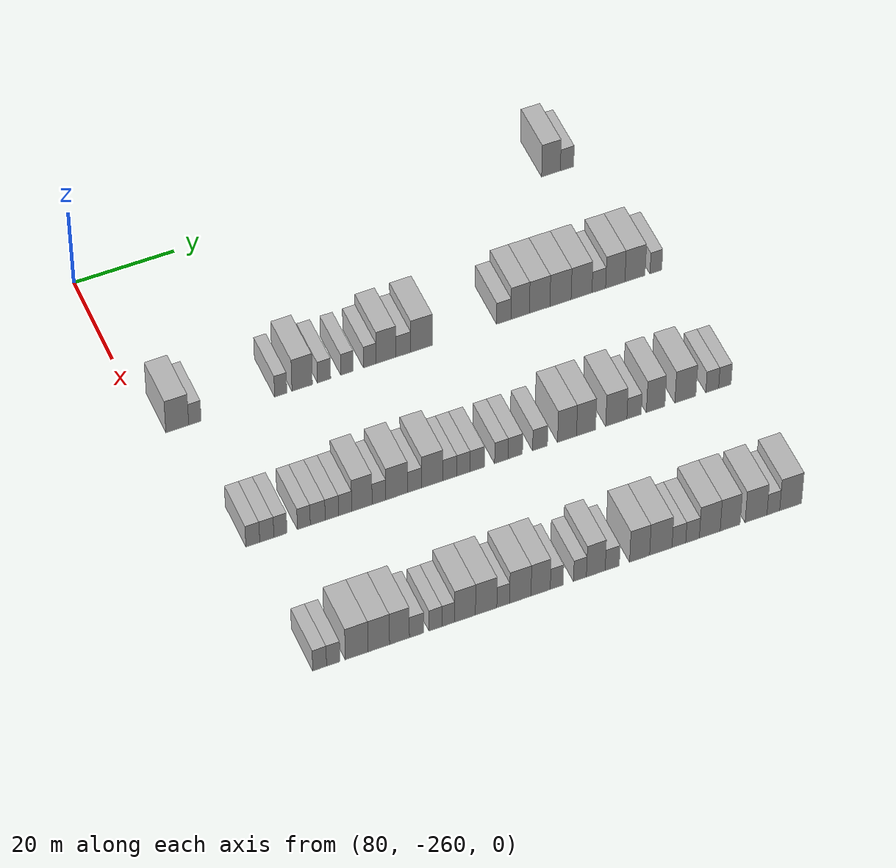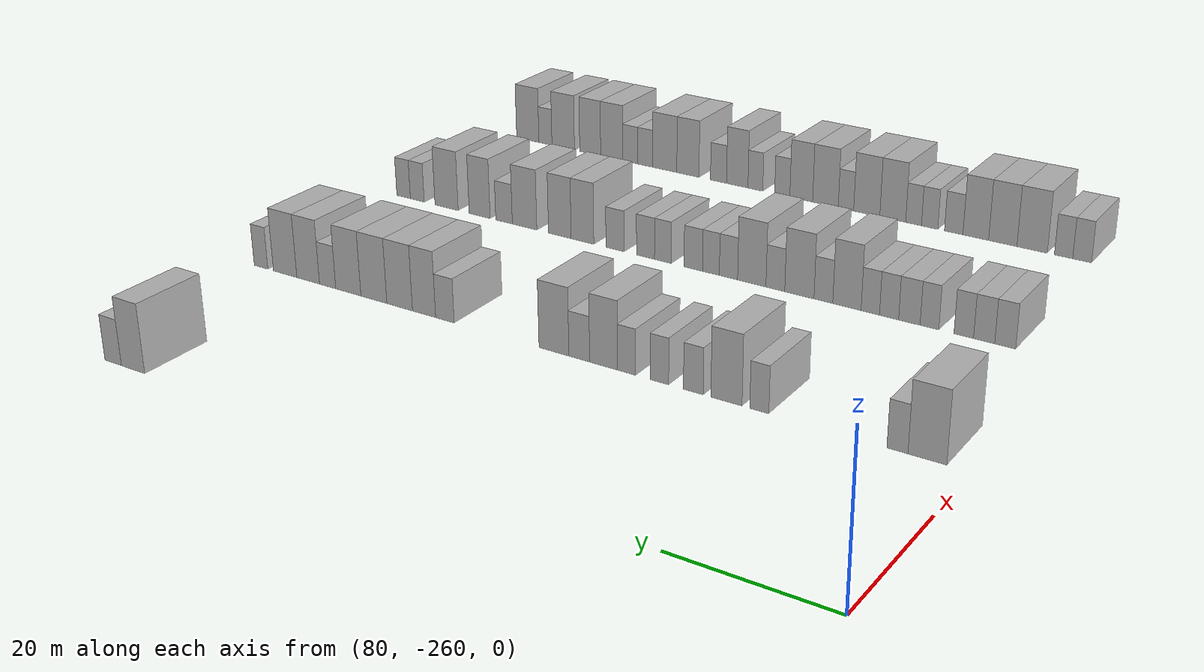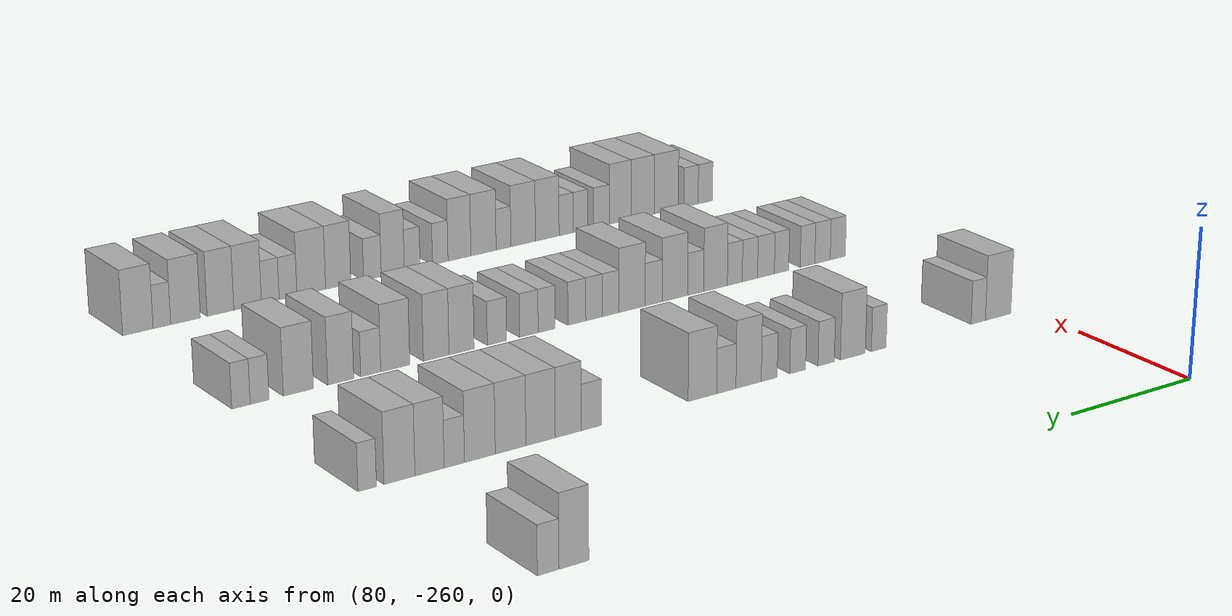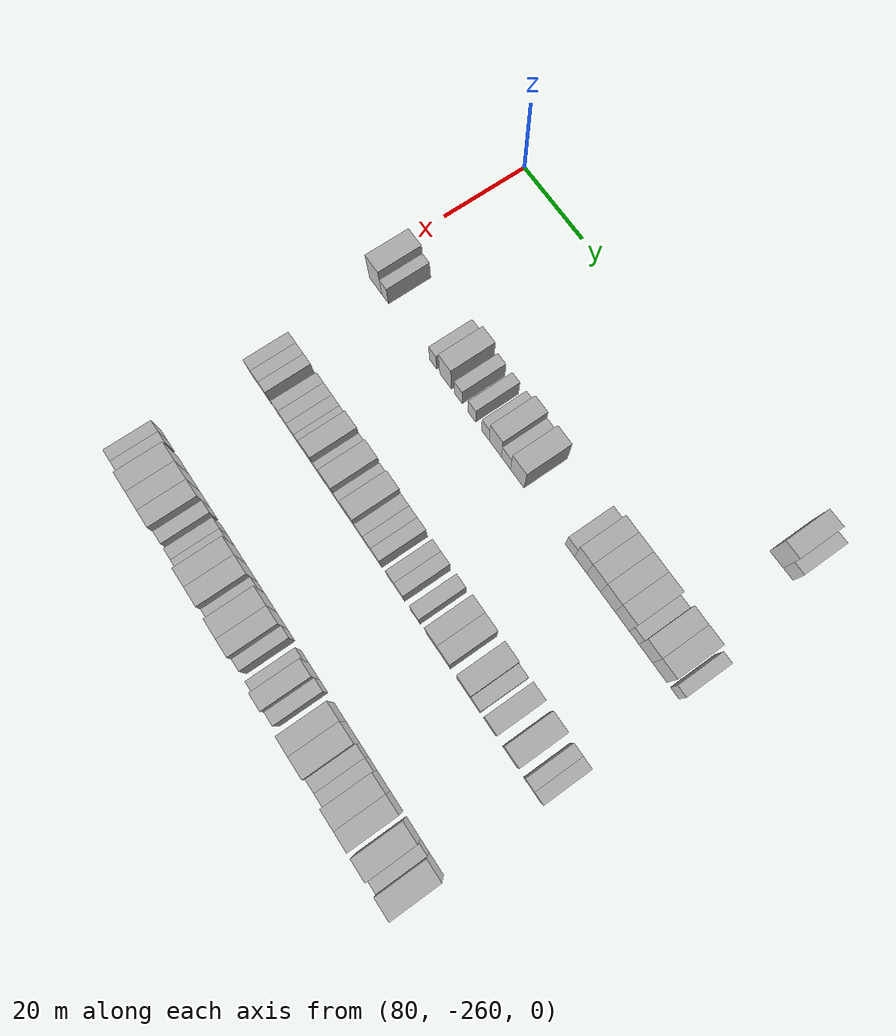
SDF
<sdf version="1.6">
 <world name="default">
  <model name="building_511">
   <static>1</static>
   <pose>85.0000 -167.1411 0 0.000000 0.000000 0.000000</pose>
   <link name="link">
    <pose>0 0 4.50 0 0 0</pose>
    <collision name="collision"><geometry><box><size>10.0000 3.8856 9.0000</size></box></geometry></collision>
    <visual name="visual">
     <cast_shadows>0</cast_shadows>
     <geometry><box><size>10.0000 3.8856 9.0000</size></box></geometry>
     <material>
      <script>
       <uri>model://HANNAS_wall/materials/scripts</uri>
       <uri>model://HANNAS_wall/materials/textures</uri>
       <name>vrc/HANNAS_wall</name>
      </script>
     </material>
    </visual>
   </link>
  </model>
  <model name="building_512">
   <static>1</static>
   <pose>85.0000 -163.8048 0 0.000000 0.000000 0.000000</pose>
   <link name="link">
    <pose>0 0 3.00 0 0 0</pose>
    <collision name="collision"><geometry><box><size>10.0000 2.7870 6.0000</size></box></geometry></collision>
    <visual name="visual">
     <cast_shadows>0</cast_shadows>
     <geometry><box><size>10.0000 2.7870 6.0000</size></box></geometry>
     <material>
      <script>
       <uri>model://HANNAS_wall/materials/scripts</uri>
       <uri>model://HANNAS_wall/materials/textures</uri>
       <name>vrc/HANNAS_wall</name>
      </script>
     </material>
    </visual>
   </link>
  </model>
  <model name="building_712">
   <static>1</static>
   <pose>115.0000 -254.9087 0 0.000000 0.000000 0.000000</pose>
   <link name="link">
    <pose>0 0 4.50 0 0 0</pose>
    <collision name="collision"><geometry><box><size>10.0000 4.4676 9.0000</size></box></geometry></collision>
    <visual name="visual">
     <cast_shadows>0</cast_shadows>
     <geometry><box><size>10.0000 4.4676 9.0000</size></box></geometry>
     <material>
      <script>
       <uri>model://HANNAS_wall/materials/scripts</uri>
       <uri>model://HANNAS_wall/materials/textures</uri>
       <name>vrc/HANNAS_wall</name>
      </script>
     </material>
    </visual>
   </link>
  </model>
  <model name="building_713">
   <static>1</static>
   <pose>115.0000 -251.4471 0 0.000000 0.000000 0.000000</pose>
   <link name="link">
    <pose>0 0 3.00 0 0 0</pose>
    <collision name="collision"><geometry><box><size>10.0000 2.4556 6.0000</size></box></geometry></collision>
    <visual name="visual">
     <cast_shadows>0</cast_shadows>
     <geometry><box><size>10.0000 2.4556 6.0000</size></box></geometry>
     <material>
      <script>
       <uri>model://HANNAS_wall/materials/scripts</uri>
       <uri>model://HANNAS_wall/materials/textures</uri>
       <name>vrc/HANNAS_wall</name>
      </script>
     </material>
    </visual>
   </link>
  </model>
  <model name="building_714">
   <static>1</static>
   <pose>115.0000 -234.5735 0 0.000000 0.000000 0.000000</pose>
   <link name="link">
    <pose>0 0 3.00 0 0 0</pose>
    <collision name="collision"><geometry><box><size>10.0000 2.4306 6.0000</size></box></geometry></collision>
    <visual name="visual">
     <cast_shadows>0</cast_shadows>
     <geometry><box><size>10.0000 2.4306 6.0000</size></box></geometry>
     <material>
      <script>
       <uri>model://HANNAS_wall/materials/scripts</uri>
       <uri>model://HANNAS_wall/materials/textures</uri>
       <name>vrc/HANNAS_wall</name>
      </script>
     </material>
    </visual>
   </link>
  </model>
  <model name="building_715">
   <static>1</static>
   <pose>115.0000 -230.3305 0 0.000000 0.000000 0.000000</pose>
   <link name="link">
    <pose>0 0 4.50 0 0 0</pose>
    <collision name="collision"><geometry><box><size>10.0000 4.0553 9.0000</size></box></geometry></collision>
    <visual name="visual">
     <cast_shadows>0</cast_shadows>
     <geometry><box><size>10.0000 4.0553 9.0000</size></box></geometry>
     <material>
      <script>
       <uri>model://HANNAS_wall/materials/scripts</uri>
       <uri>model://HANNAS_wall/materials/textures</uri>
       <name>vrc/HANNAS_wall</name>
      </script>
     </material>
    </visual>
   </link>
  </model>
  <model name="building_716">
   <static>1</static>
   <pose>115.0000 -225.9872 0 0.000000 0.000000 0.000000</pose>
   <link name="link">
    <pose>0 0 3.00 0 0 0</pose>
    <collision name="collision"><geometry><box><size>10.0000 2.6314 6.0000</size></box></geometry></collision>
    <visual name="visual">
     <cast_shadows>0</cast_shadows>
     <geometry><box><size>10.0000 2.6314 6.0000</size></box></geometry>
     <material>
      <script>
       <uri>model://HANNAS_wall/materials/scripts</uri>
       <uri>model://HANNAS_wall/materials/textures</uri>
       <name>vrc/HANNAS_wall</name>
      </script>
     </material>
    </visual>
   </link>
  </model>
  <model name="building_717">
   <static>1</static>
   <pose>115.0000 -221.4176 0 0.000000 0.000000 0.000000</pose>
   <link name="link">
    <pose>0 0 3.00 0 0 0</pose>
    <collision name="collision"><geometry><box><size>10.0000 2.5079 6.0000</size></box></geometry></collision>
    <visual name="visual">
     <cast_shadows>0</cast_shadows>
     <geometry><box><size>10.0000 2.5079 6.0000</size></box></geometry>
     <material>
      <script>
       <uri>model://HANNAS_wall/materials/scripts</uri>
       <uri>model://HANNAS_wall/materials/textures</uri>
       <name>vrc/HANNAS_wall</name>
      </script>
     </material>
    </visual>
   </link>
  </model>
  <model name="building_718">
   <static>1</static>
   <pose>115.0000 -216.9080 0 0.000000 0.000000 0.000000</pose>
   <link name="link">
    <pose>0 0 3.00 0 0 0</pose>
    <collision name="collision"><geometry><box><size>10.0000 2.5112 6.0000</size></box></geometry></collision>
    <visual name="visual">
     <cast_shadows>0</cast_shadows>
     <geometry><box><size>10.0000 2.5112 6.0000</size></box></geometry>
     <material>
      <script>
       <uri>model://HANNAS_wall/materials/scripts</uri>
       <uri>model://HANNAS_wall/materials/textures</uri>
       <name>vrc/HANNAS_wall</name>
      </script>
     </material>
    </visual>
   </link>
  </model>
  <model name="building_719">
   <static>1</static>
   <pose>115.0000 -213.6803 0 0.000000 0.000000 0.000000</pose>
   <link name="link">
    <pose>0 0 4.50 0 0 0</pose>
    <collision name="collision"><geometry><box><size>10.0000 3.9442 9.0000</size></box></geometry></collision>
    <visual name="visual">
     <cast_shadows>0</cast_shadows>
     <geometry><box><size>10.0000 3.9442 9.0000</size></box></geometry>
     <material>
      <script>
       <uri>model://HANNAS_wall/materials/scripts</uri>
       <uri>model://HANNAS_wall/materials/textures</uri>
       <name>vrc/HANNAS_wall</name>
      </script>
     </material>
    </visual>
   </link>
  </model>
  <model name="building_720">
   <static>1</static>
   <pose>115.0000 -210.2153 0 0.000000 0.000000 0.000000</pose>
   <link name="link">
    <pose>0 0 3.00 0 0 0</pose>
    <collision name="collision"><geometry><box><size>10.0000 2.9859 6.0000</size></box></geometry></collision>
    <visual name="visual">
     <cast_shadows>0</cast_shadows>
     <geometry><box><size>10.0000 2.9859 6.0000</size></box></geometry>
     <material>
      <script>
       <uri>model://HANNAS_wall/materials/scripts</uri>
       <uri>model://HANNAS_wall/materials/textures</uri>
       <name>vrc/HANNAS_wall</name>
      </script>
     </material>
    </visual>
   </link>
  </model>
  <model name="building_721">
   <static>1</static>
   <pose>115.0000 -206.5466 0 0.000000 0.000000 0.000000</pose>
   <link name="link">
    <pose>0 0 4.50 0 0 0</pose>
    <collision name="collision"><geometry><box><size>10.0000 4.3514 9.0000</size></box></geometry></collision>
    <visual name="visual">
     <cast_shadows>0</cast_shadows>
     <geometry><box><size>10.0000 4.3514 9.0000</size></box></geometry>
     <material>
      <script>
       <uri>model://HANNAS_wall/materials/scripts</uri>
       <uri>model://HANNAS_wall/materials/textures</uri>
       <name>vrc/HANNAS_wall</name>
      </script>
     </material>
    </visual>
   </link>
  </model>
  <model name="building_722">
   <static>1</static>
   <pose>115.0000 -189.9897 0 0.000000 0.000000 0.000000</pose>
   <link name="link">
    <pose>0 0 3.00 0 0 0</pose>
    <collision name="collision"><geometry><box><size>10.0000 2.9208 6.0000</size></box></geometry></collision>
    <visual name="visual">
     <cast_shadows>0</cast_shadows>
     <geometry><box><size>10.0000 2.9208 6.0000</size></box></geometry>
     <material>
      <script>
       <uri>model://HANNAS_wall/materials/scripts</uri>
       <uri>model://HANNAS_wall/materials/textures</uri>
       <name>vrc/HANNAS_wall</name>
      </script>
     </material>
    </visual>
   </link>
  </model>
  <model name="building_723">
   <static>1</static>
   <pose>115.0000 -186.6742 0 0.000000 0.000000 0.000000</pose>
   <link name="link">
    <pose>0 0 4.50 0 0 0</pose>
    <collision name="collision"><geometry><box><size>10.0000 3.7102 9.0000</size></box></geometry></collision>
    <visual name="visual">
     <cast_shadows>0</cast_shadows>
     <geometry><box><size>10.0000 3.7102 9.0000</size></box></geometry>
     <material>
      <script>
       <uri>model://HANNAS_wall/materials/scripts</uri>
       <uri>model://HANNAS_wall/materials/textures</uri>
       <name>vrc/HANNAS_wall</name>
      </script>
     </material>
    </visual>
   </link>
  </model>
  <model name="building_724">
   <static>1</static>
   <pose>115.0000 -182.7332 0 0.000000 0.000000 0.000000</pose>
   <link name="link">
    <pose>0 0 4.50 0 0 0</pose>
    <collision name="collision"><geometry><box><size>10.0000 4.1718 9.0000</size></box></geometry></collision>
    <visual name="visual">
     <cast_shadows>0</cast_shadows>
     <geometry><box><size>10.0000 4.1718 9.0000</size></box></geometry>
     <material>
      <script>
       <uri>model://HANNAS_wall/materials/scripts</uri>
       <uri>model://HANNAS_wall/materials/textures</uri>
       <name>vrc/HANNAS_wall</name>
      </script>
     </material>
    </visual>
   </link>
  </model>
  <model name="building_725">
   <static>1</static>
   <pose>115.0000 -178.4920 0 0.000000 0.000000 0.000000</pose>
   <link name="link">
    <pose>0 0 4.50 0 0 0</pose>
    <collision name="collision"><geometry><box><size>10.0000 4.3107 9.0000</size></box></geometry></collision>
    <visual name="visual">
     <cast_shadows>0</cast_shadows>
     <geometry><box><size>10.0000 4.3107 9.0000</size></box></geometry>
     <material>
      <script>
       <uri>model://HANNAS_wall/materials/scripts</uri>
       <uri>model://HANNAS_wall/materials/textures</uri>
       <name>vrc/HANNAS_wall</name>
      </script>
     </material>
    </visual>
   </link>
  </model>
  <model name="building_726">
   <static>1</static>
   <pose>115.0000 -174.2076 0 0.000000 0.000000 0.000000</pose>
   <link name="link">
    <pose>0 0 4.50 0 0 0</pose>
    <collision name="collision"><geometry><box><size>10.0000 4.2580 9.0000</size></box></geometry></collision>
    <visual name="visual">
     <cast_shadows>0</cast_shadows>
     <geometry><box><size>10.0000 4.2580 9.0000</size></box></geometry>
     <material>
      <script>
       <uri>model://HANNAS_wall/materials/scripts</uri>
       <uri>model://HANNAS_wall/materials/textures</uri>
       <name>vrc/HANNAS_wall</name>
      </script>
     </material>
    </visual>
   </link>
  </model>
  <model name="building_727">
   <static>1</static>
   <pose>115.0000 -170.6862 0 0.000000 0.000000 0.000000</pose>
   <link name="link">
    <pose>0 0 3.00 0 0 0</pose>
    <collision name="collision"><geometry><box><size>10.0000 2.7847 6.0000</size></box></geometry></collision>
    <visual name="visual">
     <cast_shadows>0</cast_shadows>
     <geometry><box><size>10.0000 2.7847 6.0000</size></box></geometry>
     <material>
      <script>
       <uri>model://HANNAS_wall/materials/scripts</uri>
       <uri>model://HANNAS_wall/materials/textures</uri>
       <name>vrc/HANNAS_wall</name>
      </script>
     </material>
    </visual>
   </link>
  </model>
  <model name="building_728">
   <static>1</static>
   <pose>115.0000 -167.3169 0 0.000000 0.000000 0.000000</pose>
   <link name="link">
    <pose>0 0 4.50 0 0 0</pose>
    <collision name="collision"><geometry><box><size>10.0000 3.9539 9.0000</size></box></geometry></collision>
    <visual name="visual">
     <cast_shadows>0</cast_shadows>
     <geometry><box><size>10.0000 3.9539 9.0000</size></box></geometry>
     <material>
      <script>
       <uri>model://HANNAS_wall/materials/scripts</uri>
       <uri>model://HANNAS_wall/materials/textures</uri>
       <name>vrc/HANNAS_wall</name>
      </script>
     </material>
    </visual>
   </link>
  </model>
  <model name="building_729">
   <static>1</static>
   <pose>115.0000 -163.2687 0 0.000000 0.000000 0.000000</pose>
   <link name="link">
    <pose>0 0 4.50 0 0 0</pose>
    <collision name="collision"><geometry><box><size>10.0000 4.1426 9.0000</size></box></geometry></collision>
    <visual name="visual">
     <cast_shadows>0</cast_shadows>
     <geometry><box><size>10.0000 4.1426 9.0000</size></box></geometry>
     <material>
      <script>
       <uri>model://HANNAS_wall/materials/scripts</uri>
       <uri>model://HANNAS_wall/materials/textures</uri>
       <name>vrc/HANNAS_wall</name>
      </script>
     </material>
    </visual>
   </link>
  </model>
  <model name="building_730">
   <static>1</static>
   <pose>115.0000 -158.9741 0 0.000000 0.000000 0.000000</pose>
   <link name="link">
    <pose>0 0 3.00 0 0 0</pose>
    <collision name="collision"><geometry><box><size>10.0000 2.4466 6.0000</size></box></geometry></collision>
    <visual name="visual">
     <cast_shadows>0</cast_shadows>
     <geometry><box><size>10.0000 2.4466 6.0000</size></box></geometry>
     <material>
      <script>
       <uri>model://HANNAS_wall/materials/scripts</uri>
       <uri>model://HANNAS_wall/materials/textures</uri>
       <name>vrc/HANNAS_wall</name>
      </script>
     </material>
    </visual>
   </link>
  </model>
  <model name="building_924">
   <static>1</static>
   <pose>145.0000 -252.0836 0 0.000000 0.000000 0.000000</pose>
   <link name="link">
    <pose>0 0 3.00 0 0 0</pose>
    <collision name="collision"><geometry><box><size>10.0000 2.6788 6.0000</size></box></geometry></collision>
    <visual name="visual">
     <cast_shadows>0</cast_shadows>
     <geometry><box><size>10.0000 2.6788 6.0000</size></box></geometry>
     <material>
      <script>
       <uri>model://HANNAS_wall/materials/scripts</uri>
       <uri>model://HANNAS_wall/materials/textures</uri>
       <name>vrc/HANNAS_wall</name>
      </script>
     </material>
    </visual>
   </link>
  </model>
  <model name="building_925">
   <static>1</static>
   <pose>145.0000 -249.3803 0 0.000000 0.000000 0.000000</pose>
   <link name="link">
    <pose>0 0 3.00 0 0 0</pose>
    <collision name="collision"><geometry><box><size>10.0000 2.7277 6.0000</size></box></geometry></collision>
    <visual name="visual">
     <cast_shadows>0</cast_shadows>
     <geometry><box><size>10.0000 2.7277 6.0000</size></box></geometry>
     <material>
      <script>
       <uri>model://HANNAS_wall/materials/scripts</uri>
       <uri>model://HANNAS_wall/materials/textures</uri>
       <name>vrc/HANNAS_wall</name>
      </script>
     </material>
    </visual>
   </link>
  </model>
  <model name="building_926">
   <static>1</static>
   <pose>145.0000 -246.7400 0 0.000000 0.000000 0.000000</pose>
   <link name="link">
    <pose>0 0 3.00 0 0 0</pose>
    <collision name="collision"><geometry><box><size>10.0000 2.5531 6.0000</size></box></geometry></collision>
    <visual name="visual">
     <cast_shadows>0</cast_shadows>
     <geometry><box><size>10.0000 2.5531 6.0000</size></box></geometry>
     <material>
      <script>
       <uri>model://HANNAS_wall/materials/scripts</uri>
       <uri>model://HANNAS_wall/materials/textures</uri>
       <name>vrc/HANNAS_wall</name>
      </script>
     </material>
    </visual>
   </link>
  </model>
  <model name="building_927">
   <static>1</static>
   <pose>145.0000 -242.2131 0 0.000000 0.000000 0.000000</pose>
   <link name="link">
    <pose>0 0 3.00 0 0 0</pose>
    <collision name="collision"><geometry><box><size>10.0000 2.5006 6.0000</size></box></geometry></collision>
    <visual name="visual">
     <cast_shadows>0</cast_shadows>
     <geometry><box><size>10.0000 2.5006 6.0000</size></box></geometry>
     <material>
      <script>
       <uri>model://HANNAS_wall/materials/scripts</uri>
       <uri>model://HANNAS_wall/materials/textures</uri>
       <name>vrc/HANNAS_wall</name>
      </script>
     </material>
    </visual>
   </link>
  </model>
  <model name="building_928">
   <static>1</static>
   <pose>145.0000 -239.5157 0 0.000000 0.000000 0.000000</pose>
   <link name="link">
    <pose>0 0 3.00 0 0 0</pose>
    <collision name="collision"><geometry><box><size>10.0000 2.8944 6.0000</size></box></geometry></collision>
    <visual name="visual">
     <cast_shadows>0</cast_shadows>
     <geometry><box><size>10.0000 2.8944 6.0000</size></box></geometry>
     <material>
      <script>
       <uri>model://HANNAS_wall/materials/scripts</uri>
       <uri>model://HANNAS_wall/materials/textures</uri>
       <name>vrc/HANNAS_wall</name>
      </script>
     </material>
    </visual>
   </link>
  </model>
  <model name="building_929">
   <static>1</static>
   <pose>145.0000 -236.7632 0 0.000000 0.000000 0.000000</pose>
   <link name="link">
    <pose>0 0 3.00 0 0 0</pose>
    <collision name="collision"><geometry><box><size>10.0000 2.6106 6.0000</size></box></geometry></collision>
    <visual name="visual">
     <cast_shadows>0</cast_shadows>
     <geometry><box><size>10.0000 2.6106 6.0000</size></box></geometry>
     <material>
      <script>
       <uri>model://HANNAS_wall/materials/scripts</uri>
       <uri>model://HANNAS_wall/materials/textures</uri>
       <name>vrc/HANNAS_wall</name>
      </script>
     </material>
    </visual>
   </link>
  </model>
  <model name="building_930">
   <static>1</static>
   <pose>145.0000 -234.1843 0 0.000000 0.000000 0.000000</pose>
   <link name="link">
    <pose>0 0 3.00 0 0 0</pose>
    <collision name="collision"><geometry><box><size>10.0000 2.5474 6.0000</size></box></geometry></collision>
    <visual name="visual">
     <cast_shadows>0</cast_shadows>
     <geometry><box><size>10.0000 2.5474 6.0000</size></box></geometry>
     <material>
      <script>
       <uri>model://HANNAS_wall/materials/scripts</uri>
       <uri>model://HANNAS_wall/materials/textures</uri>
       <name>vrc/HANNAS_wall</name>
      </script>
     </material>
    </visual>
   </link>
  </model>
  <model name="building_931">
   <static>1</static>
   <pose>145.0000 -230.9242 0 0.000000 0.000000 0.000000</pose>
   <link name="link">
    <pose>0 0 4.50 0 0 0</pose>
    <collision name="collision"><geometry><box><size>10.0000 3.9728 9.0000</size></box></geometry></collision>
    <visual name="visual">
     <cast_shadows>0</cast_shadows>
     <geometry><box><size>10.0000 3.9728 9.0000</size></box></geometry>
     <material>
      <script>
       <uri>model://HANNAS_wall/materials/scripts</uri>
       <uri>model://HANNAS_wall/materials/textures</uri>
       <name>vrc/HANNAS_wall</name>
      </script>
     </material>
    </visual>
   </link>
  </model>
  <model name="building_932">
   <static>1</static>
   <pose>145.0000 -227.6026 0 0.000000 0.000000 0.000000</pose>
   <link name="link">
    <pose>0 0 3.00 0 0 0</pose>
    <collision name="collision"><geometry><box><size>10.0000 2.6703 6.0000</size></box></geometry></collision>
    <visual name="visual">
     <cast_shadows>0</cast_shadows>
     <geometry><box><size>10.0000 2.6703 6.0000</size></box></geometry>
     <material>
      <script>
       <uri>model://HANNAS_wall/materials/scripts</uri>
       <uri>model://HANNAS_wall/materials/textures</uri>
       <name>vrc/HANNAS_wall</name>
      </script>
     </material>
    </visual>
   </link>
  </model>
  <model name="building_933">
   <static>1</static>
   <pose>145.0000 -224.1518 0 0.000000 0.000000 0.000000</pose>
   <link name="link">
    <pose>0 0 4.50 0 0 0</pose>
    <collision name="collision"><geometry><box><size>10.0000 4.2313 9.0000</size></box></geometry></collision>
    <visual name="visual">
     <cast_shadows>0</cast_shadows>
     <geometry><box><size>10.0000 4.2313 9.0000</size></box></geometry>
     <material>
      <script>
       <uri>model://HANNAS_wall/materials/scripts</uri>
       <uri>model://HANNAS_wall/materials/textures</uri>
       <name>vrc/HANNAS_wall</name>
      </script>
     </material>
    </visual>
   </link>
  </model>
  <model name="building_934">
   <static>1</static>
   <pose>145.0000 -220.6575 0 0.000000 0.000000 0.000000</pose>
   <link name="link">
    <pose>0 0 3.00 0 0 0</pose>
    <collision name="collision"><geometry><box><size>10.0000 2.7573 6.0000</size></box></geometry></collision>
    <visual name="visual">
     <cast_shadows>0</cast_shadows>
     <geometry><box><size>10.0000 2.7573 6.0000</size></box></geometry>
     <material>
      <script>
       <uri>model://HANNAS_wall/materials/scripts</uri>
       <uri>model://HANNAS_wall/materials/textures</uri>
       <name>vrc/HANNAS_wall</name>
      </script>
     </material>
    </visual>
   </link>
  </model>
  <model name="building_935">
   <static>1</static>
   <pose>145.0000 -217.1676 0 0.000000 0.000000 0.000000</pose>
   <link name="link">
    <pose>0 0 4.50 0 0 0</pose>
    <collision name="collision"><geometry><box><size>10.0000 4.2224 9.0000</size></box></geometry></collision>
    <visual name="visual">
     <cast_shadows>0</cast_shadows>
     <geometry><box><size>10.0000 4.2224 9.0000</size></box></geometry>
     <material>
      <script>
       <uri>model://HANNAS_wall/materials/scripts</uri>
       <uri>model://HANNAS_wall/materials/textures</uri>
       <name>vrc/HANNAS_wall</name>
      </script>
     </material>
    </visual>
   </link>
  </model>
  <model name="building_936">
   <static>1</static>
   <pose>145.0000 -213.6771 0 0.000000 0.000000 0.000000</pose>
   <link name="link">
    <pose>0 0 3.00 0 0 0</pose>
    <collision name="collision"><geometry><box><size>10.0000 2.7586 6.0000</size></box></geometry></collision>
    <visual name="visual">
     <cast_shadows>0</cast_shadows>
     <geometry><box><size>10.0000 2.7586 6.0000</size></box></geometry>
     <material>
      <script>
       <uri>model://HANNAS_wall/materials/scripts</uri>
       <uri>model://HANNAS_wall/materials/textures</uri>
       <name>vrc/HANNAS_wall</name>
      </script>
     </material>
    </visual>
   </link>
  </model>
  <model name="building_937">
   <static>1</static>
   <pose>145.0000 -211.0093 0 0.000000 0.000000 0.000000</pose>
   <link name="link">
    <pose>0 0 3.00 0 0 0</pose>
    <collision name="collision"><geometry><box><size>10.0000 2.5770 6.0000</size></box></geometry></collision>
    <visual name="visual">
     <cast_shadows>0</cast_shadows>
     <geometry><box><size>10.0000 2.5770 6.0000</size></box></geometry>
     <material>
      <script>
       <uri>model://HANNAS_wall/materials/scripts</uri>
       <uri>model://HANNAS_wall/materials/textures</uri>
       <name>vrc/HANNAS_wall</name>
      </script>
     </material>
    </visual>
   </link>
  </model>
  <model name="building_938">
   <static>1</static>
   <pose>145.0000 -208.3015 0 0.000000 0.000000 0.000000</pose>
   <link name="link">
    <pose>0 0 3.00 0 0 0</pose>
    <collision name="collision"><geometry><box><size>10.0000 2.8387 6.0000</size></box></geometry></collision>
    <visual name="visual">
     <cast_shadows>0</cast_shadows>
     <geometry><box><size>10.0000 2.8387 6.0000</size></box></geometry>
     <material>
      <script>
       <uri>model://HANNAS_wall/materials/scripts</uri>
       <uri>model://HANNAS_wall/materials/textures</uri>
       <name>vrc/HANNAS_wall</name>
      </script>
     </material>
    </visual>
   </link>
  </model>
  <model name="building_939">
   <static>1</static>
   <pose>145.0000 -203.5498 0 0.000000 0.000000 0.000000</pose>
   <link name="link">
    <pose>0 0 3.00 0 0 0</pose>
    <collision name="collision"><geometry><box><size>10.0000 2.6648 6.0000</size></box></geometry></collision>
    <visual name="visual">
     <cast_shadows>0</cast_shadows>
     <geometry><box><size>10.0000 2.6648 6.0000</size></box></geometry>
     <material>
      <script>
       <uri>model://HANNAS_wall/materials/scripts</uri>
       <uri>model://HANNAS_wall/materials/textures</uri>
       <name>vrc/HANNAS_wall</name>
      </script>
     </material>
    </visual>
   </link>
  </model>
  <model name="building_940">
   <static>1</static>
   <pose>145.0000 -200.7870 0 0.000000 0.000000 0.000000</pose>
   <link name="link">
    <pose>0 0 3.00 0 0 0</pose>
    <collision name="collision"><geometry><box><size>10.0000 2.8607 6.0000</size></box></geometry></collision>
    <visual name="visual">
     <cast_shadows>0</cast_shadows>
     <geometry><box><size>10.0000 2.8607 6.0000</size></box></geometry>
     <material>
      <script>
       <uri>model://HANNAS_wall/materials/scripts</uri>
       <uri>model://HANNAS_wall/materials/textures</uri>
       <name>vrc/HANNAS_wall</name>
      </script>
     </material>
    </visual>
   </link>
  </model>
  <model name="building_941">
   <static>1</static>
   <pose>145.0000 -195.8770 0 0.000000 0.000000 0.000000</pose>
   <link name="link">
    <pose>0 0 3.00 0 0 0</pose>
    <collision name="collision"><geometry><box><size>10.0000 2.9593 6.0000</size></box></geometry></collision>
    <visual name="visual">
     <cast_shadows>0</cast_shadows>
     <geometry><box><size>10.0000 2.9593 6.0000</size></box></geometry>
     <material>
      <script>
       <uri>model://HANNAS_wall/materials/scripts</uri>
       <uri>model://HANNAS_wall/materials/textures</uri>
       <name>vrc/HANNAS_wall</name>
      </script>
     </material>
    </visual>
   </link>
  </model>
  <model name="building_942">
   <static>1</static>
   <pose>145.0000 -190.5117 0 0.000000 0.000000 0.000000</pose>
   <link name="link">
    <pose>0 0 4.50 0 0 0</pose>
    <collision name="collision"><geometry><box><size>10.0000 3.7713 9.0000</size></box></geometry></collision>
    <visual name="visual">
     <cast_shadows>0</cast_shadows>
     <geometry><box><size>10.0000 3.7713 9.0000</size></box></geometry>
     <material>
      <script>
       <uri>model://HANNAS_wall/materials/scripts</uri>
       <uri>model://HANNAS_wall/materials/textures</uri>
       <name>vrc/HANNAS_wall</name>
      </script>
     </material>
    </visual>
   </link>
  </model>
  <model name="building_943">
   <static>1</static>
   <pose>145.0000 -186.7137 0 0.000000 0.000000 0.000000</pose>
   <link name="link">
    <pose>0 0 4.50 0 0 0</pose>
    <collision name="collision"><geometry><box><size>10.0000 3.8247 9.0000</size></box></geometry></collision>
    <visual name="visual">
     <cast_shadows>0</cast_shadows>
     <geometry><box><size>10.0000 3.8247 9.0000</size></box></geometry>
     <material>
      <script>
       <uri>model://HANNAS_wall/materials/scripts</uri>
       <uri>model://HANNAS_wall/materials/textures</uri>
       <name>vrc/HANNAS_wall</name>
      </script>
     </material>
    </visual>
   </link>
  </model>
  <model name="building_944">
   <static>1</static>
   <pose>145.0000 -180.6755 0 0.000000 0.000000 0.000000</pose>
   <link name="link">
    <pose>0 0 4.50 0 0 0</pose>
    <collision name="collision"><geometry><box><size>10.0000 4.2518 9.0000</size></box></geometry></collision>
    <visual name="visual">
     <cast_shadows>0</cast_shadows>
     <geometry><box><size>10.0000 4.2518 9.0000</size></box></geometry>
     <material>
      <script>
       <uri>model://HANNAS_wall/materials/scripts</uri>
       <uri>model://HANNAS_wall/materials/textures</uri>
       <name>vrc/HANNAS_wall</name>
      </script>
     </material>
    </visual>
   </link>
  </model>
  <model name="building_945">
   <static>1</static>
   <pose>145.0000 -177.0966 0 0.000000 0.000000 0.000000</pose>
   <link name="link">
    <pose>0 0 3.00 0 0 0</pose>
    <collision name="collision"><geometry><box><size>10.0000 2.9060 6.0000</size></box></geometry></collision>
    <visual name="visual">
     <cast_shadows>0</cast_shadows>
     <geometry><box><size>10.0000 2.9060 6.0000</size></box></geometry>
     <material>
      <script>
       <uri>model://HANNAS_wall/materials/scripts</uri>
       <uri>model://HANNAS_wall/materials/textures</uri>
       <name>vrc/HANNAS_wall</name>
      </script>
     </material>
    </visual>
   </link>
  </model>
  <model name="building_946">
   <static>1</static>
   <pose>145.0000 -172.7741 0 0.000000 0.000000 0.000000</pose>
   <link name="link">
    <pose>0 0 4.50 0 0 0</pose>
    <collision name="collision"><geometry><box><size>10.0000 3.7390 9.0000</size></box></geometry></collision>
    <visual name="visual">
     <cast_shadows>0</cast_shadows>
     <geometry><box><size>10.0000 3.7390 9.0000</size></box></geometry>
     <material>
      <script>
       <uri>model://HANNAS_wall/materials/scripts</uri>
       <uri>model://HANNAS_wall/materials/textures</uri>
       <name>vrc/HANNAS_wall</name>
      </script>
     </material>
    </visual>
   </link>
  </model>
  <model name="building_947">
   <static>1</static>
   <pose>145.0000 -166.7823 0 0.000000 0.000000 0.000000</pose>
   <link name="link">
    <pose>0 0 4.50 0 0 0</pose>
    <collision name="collision"><geometry><box><size>10.0000 4.2447 9.0000</size></box></geometry></collision>
    <visual name="visual">
     <cast_shadows>0</cast_shadows>
     <geometry><box><size>10.0000 4.2447 9.0000</size></box></geometry>
     <material>
      <script>
       <uri>model://HANNAS_wall/materials/scripts</uri>
       <uri>model://HANNAS_wall/materials/textures</uri>
       <name>vrc/HANNAS_wall</name>
      </script>
     </material>
    </visual>
   </link>
  </model>
  <model name="building_948">
   <static>1</static>
   <pose>145.0000 -161.3617 0 0.000000 0.000000 0.000000</pose>
   <link name="link">
    <pose>0 0 3.00 0 0 0</pose>
    <collision name="collision"><geometry><box><size>10.0000 2.5965 6.0000</size></box></geometry></collision>
    <visual name="visual">
     <cast_shadows>0</cast_shadows>
     <geometry><box><size>10.0000 2.5965 6.0000</size></box></geometry>
     <material>
      <script>
       <uri>model://HANNAS_wall/materials/scripts</uri>
       <uri>model://HANNAS_wall/materials/textures</uri>
       <name>vrc/HANNAS_wall</name>
      </script>
     </material>
    </visual>
   </link>
  </model>
  <model name="building_949">
   <static>1</static>
   <pose>145.0000 -158.7945 0 0.000000 0.000000 0.000000</pose>
   <link name="link">
    <pose>0 0 3.00 0 0 0</pose>
    <collision name="collision"><geometry><box><size>10.0000 2.5379 6.0000</size></box></geometry></collision>
    <visual name="visual">
     <cast_shadows>0</cast_shadows>
     <geometry><box><size>10.0000 2.5379 6.0000</size></box></geometry>
     <material>
      <script>
       <uri>model://HANNAS_wall/materials/scripts</uri>
       <uri>model://HANNAS_wall/materials/textures</uri>
       <name>vrc/HANNAS_wall</name>
      </script>
     </material>
    </visual>
   </link>
  </model>
  <model name="building_1155">
   <static>1</static>
   <pose>175.0000 -251.4307 0 0.000000 0.000000 0.000000</pose>
   <link name="link">
    <pose>0 0 3.00 0 0 0</pose>
    <collision name="collision"><geometry><box><size>10.0000 2.6216 6.0000</size></box></geometry></collision>
    <visual name="visual">
     <cast_shadows>0</cast_shadows>
     <geometry><box><size>10.0000 2.6216 6.0000</size></box></geometry>
     <material>
      <script>
       <uri>model://HANNAS_wall/materials/scripts</uri>
       <uri>model://HANNAS_wall/materials/textures</uri>
       <name>vrc/HANNAS_wall</name>
      </script>
     </material>
    </visual>
   </link>
  </model>
  <model name="building_1156">
   <static>1</static>
   <pose>175.0000 -248.8399 0 0.000000 0.000000 0.000000</pose>
   <link name="link">
    <pose>0 0 3.00 0 0 0</pose>
    <collision name="collision"><geometry><box><size>10.0000 2.5601 6.0000</size></box></geometry></collision>
    <visual name="visual">
     <cast_shadows>0</cast_shadows>
     <geometry><box><size>10.0000 2.5601 6.0000</size></box></geometry>
     <material>
      <script>
       <uri>model://HANNAS_wall/materials/scripts</uri>
       <uri>model://HANNAS_wall/materials/textures</uri>
       <name>vrc/HANNAS_wall</name>
      </script>
     </material>
    </visual>
   </link>
  </model>
  <model name="building_1157">
   <static>1</static>
   <pose>175.0000 -244.3858 0 0.000000 0.000000 0.000000</pose>
   <link name="link">
    <pose>0 0 4.50 0 0 0</pose>
    <collision name="collision"><geometry><box><size>10.0000 4.3480 9.0000</size></box></geometry></collision>
    <visual name="visual">
     <cast_shadows>0</cast_shadows>
     <geometry><box><size>10.0000 4.3480 9.0000</size></box></geometry>
     <material>
      <script>
       <uri>model://HANNAS_wall/materials/scripts</uri>
       <uri>model://HANNAS_wall/materials/textures</uri>
       <name>vrc/HANNAS_wall</name>
      </script>
     </material>
    </visual>
   </link>
  </model>
  <model name="building_1158">
   <static>1</static>
   <pose>175.0000 -240.1566 0 0.000000 0.000000 0.000000</pose>
   <link name="link">
    <pose>0 0 4.50 0 0 0</pose>
    <collision name="collision"><geometry><box><size>10.0000 4.1103 9.0000</size></box></geometry></collision>
    <visual name="visual">
     <cast_shadows>0</cast_shadows>
     <geometry><box><size>10.0000 4.1103 9.0000</size></box></geometry>
     <material>
      <script>
       <uri>model://HANNAS_wall/materials/scripts</uri>
       <uri>model://HANNAS_wall/materials/textures</uri>
       <name>vrc/HANNAS_wall</name>
      </script>
     </material>
    </visual>
   </link>
  </model>
  <model name="building_1159">
   <static>1</static>
   <pose>175.0000 -236.2044 0 0.000000 0.000000 0.000000</pose>
   <link name="link">
    <pose>0 0 4.50 0 0 0</pose>
    <collision name="collision"><geometry><box><size>10.0000 3.7941 9.0000</size></box></geometry></collision>
    <visual name="visual">
     <cast_shadows>0</cast_shadows>
     <geometry><box><size>10.0000 3.7941 9.0000</size></box></geometry>
     <material>
      <script>
       <uri>model://HANNAS_wall/materials/scripts</uri>
       <uri>model://HANNAS_wall/materials/textures</uri>
       <name>vrc/HANNAS_wall</name>
      </script>
     </material>
    </visual>
   </link>
  </model>
  <model name="building_1160">
   <static>1</static>
   <pose>175.0000 -232.9257 0 0.000000 0.000000 0.000000</pose>
   <link name="link">
    <pose>0 0 3.00 0 0 0</pose>
    <collision name="collision"><geometry><box><size>10.0000 2.7631 6.0000</size></box></geometry></collision>
    <visual name="visual">
     <cast_shadows>0</cast_shadows>
     <geometry><box><size>10.0000 2.7631 6.0000</size></box></geometry>
     <material>
      <script>
       <uri>model://HANNAS_wall/materials/scripts</uri>
       <uri>model://HANNAS_wall/materials/textures</uri>
       <name>vrc/HANNAS_wall</name>
      </script>
     </material>
    </visual>
   </link>
  </model>
  <model name="building_1161">
   <static>1</static>
   <pose>175.0000 -229.3003 0 0.000000 0.000000 0.000000</pose>
   <link name="link">
    <pose>0 0 3.00 0 0 0</pose>
    <collision name="collision"><geometry><box><size>10.0000 2.4878 6.0000</size></box></geometry></collision>
    <visual name="visual">
     <cast_shadows>0</cast_shadows>
     <geometry><box><size>10.0000 2.4878 6.0000</size></box></geometry>
     <material>
      <script>
       <uri>model://HANNAS_wall/materials/scripts</uri>
       <uri>model://HANNAS_wall/materials/textures</uri>
       <name>vrc/HANNAS_wall</name>
      </script>
     </material>
    </visual>
   </link>
  </model>
  <model name="building_1162">
   <static>1</static>
   <pose>175.0000 -226.8435 0 0.000000 0.000000 0.000000</pose>
   <link name="link">
    <pose>0 0 3.00 0 0 0</pose>
    <collision name="collision"><geometry><box><size>10.0000 2.4258 6.0000</size></box></geometry></collision>
    <visual name="visual">
     <cast_shadows>0</cast_shadows>
     <geometry><box><size>10.0000 2.4258 6.0000</size></box></geometry>
     <material>
      <script>
       <uri>model://HANNAS_wall/materials/scripts</uri>
       <uri>model://HANNAS_wall/materials/textures</uri>
       <name>vrc/HANNAS_wall</name>
      </script>
     </material>
    </visual>
   </link>
  </model>
  <model name="building_1163">
   <static>1</static>
   <pose>175.0000 -223.6221 0 0.000000 0.000000 0.000000</pose>
   <link name="link">
    <pose>0 0 4.50 0 0 0</pose>
    <collision name="collision"><geometry><box><size>10.0000 4.0170 9.0000</size></box></geometry></collision>
    <visual name="visual">
     <cast_shadows>0</cast_shadows>
     <geometry><box><size>10.0000 4.0170 9.0000</size></box></geometry>
     <material>
      <script>
       <uri>model://HANNAS_wall/materials/scripts</uri>
       <uri>model://HANNAS_wall/materials/textures</uri>
       <name>vrc/HANNAS_wall</name>
      </script>
     </material>
    </visual>
   </link>
  </model>
  <model name="building_1164">
   <static>1</static>
   <pose>175.0000 -219.5491 0 0.000000 0.000000 0.000000</pose>
   <link name="link">
    <pose>0 0 4.50 0 0 0</pose>
    <collision name="collision"><geometry><box><size>10.0000 4.1290 9.0000</size></box></geometry></collision>
    <visual name="visual">
     <cast_shadows>0</cast_shadows>
     <geometry><box><size>10.0000 4.1290 9.0000</size></box></geometry>
     <material>
      <script>
       <uri>model://HANNAS_wall/materials/scripts</uri>
       <uri>model://HANNAS_wall/materials/textures</uri>
       <name>vrc/HANNAS_wall</name>
      </script>
     </material>
    </visual>
   </link>
  </model>
  <model name="building_1165">
   <static>1</static>
   <pose>175.0000 -216.2513 0 0.000000 0.000000 0.000000</pose>
   <link name="link">
    <pose>0 0 3.00 0 0 0</pose>
    <collision name="collision"><geometry><box><size>10.0000 2.4666 6.0000</size></box></geometry></collision>
    <visual name="visual">
     <cast_shadows>0</cast_shadows>
     <geometry><box><size>10.0000 2.4666 6.0000</size></box></geometry>
     <material>
      <script>
       <uri>model://HANNAS_wall/materials/scripts</uri>
       <uri>model://HANNAS_wall/materials/textures</uri>
       <name>vrc/HANNAS_wall</name>
      </script>
     </material>
    </visual>
   </link>
  </model>
  <model name="building_1166">
   <static>1</static>
   <pose>175.0000 -212.9429 0 0.000000 0.000000 0.000000</pose>
   <link name="link">
    <pose>0 0 4.50 0 0 0</pose>
    <collision name="collision"><geometry><box><size>10.0000 4.1503 9.0000</size></box></geometry></collision>
    <visual name="visual">
     <cast_shadows>0</cast_shadows>
     <geometry><box><size>10.0000 4.1503 9.0000</size></box></geometry>
     <material>
      <script>
       <uri>model://HANNAS_wall/materials/scripts</uri>
       <uri>model://HANNAS_wall/materials/textures</uri>
       <name>vrc/HANNAS_wall</name>
      </script>
     </material>
    </visual>
   </link>
  </model>
  <model name="building_1167">
   <static>1</static>
   <pose>175.0000 -208.9937 0 0.000000 0.000000 0.000000</pose>
   <link name="link">
    <pose>0 0 4.50 0 0 0</pose>
    <collision name="collision"><geometry><box><size>10.0000 3.7480 9.0000</size></box></geometry></collision>
    <visual name="visual">
     <cast_shadows>0</cast_shadows>
     <geometry><box><size>10.0000 3.7480 9.0000</size></box></geometry>
     <material>
      <script>
       <uri>model://HANNAS_wall/materials/scripts</uri>
       <uri>model://HANNAS_wall/materials/textures</uri>
       <name>vrc/HANNAS_wall</name>
      </script>
     </material>
    </visual>
   </link>
  </model>
  <model name="building_1168">
   <static>1</static>
   <pose>175.0000 -205.8610 0 0.000000 0.000000 0.000000</pose>
   <link name="link">
    <pose>0 0 3.00 0 0 0</pose>
    <collision name="collision"><geometry><box><size>10.0000 2.5176 6.0000</size></box></geometry></collision>
    <visual name="visual">
     <cast_shadows>0</cast_shadows>
     <geometry><box><size>10.0000 2.5176 6.0000</size></box></geometry>
     <material>
      <script>
       <uri>model://HANNAS_wall/materials/scripts</uri>
       <uri>model://HANNAS_wall/materials/textures</uri>
       <name>vrc/HANNAS_wall</name>
      </script>
     </material>
    </visual>
   </link>
  </model>
  <model name="building_1169">
   <static>1</static>
   <pose>175.0000 -201.3452 0 0.000000 0.000000 0.000000</pose>
   <link name="link">
    <pose>0 0 3.00 0 0 0</pose>
    <collision name="collision"><geometry><box><size>10.0000 2.5139 6.0000</size></box></geometry></collision>
    <visual name="visual">
     <cast_shadows>0</cast_shadows>
     <geometry><box><size>10.0000 2.5139 6.0000</size></box></geometry>
     <material>
      <script>
       <uri>model://HANNAS_wall/materials/scripts</uri>
       <uri>model://HANNAS_wall/materials/textures</uri>
       <name>vrc/HANNAS_wall</name>
      </script>
     </material>
    </visual>
   </link>
  </model>
  <model name="building_1170">
   <static>1</static>
   <pose>175.0000 -198.2525 0 0.000000 0.000000 0.000000</pose>
   <link name="link">
    <pose>0 0 4.50 0 0 0</pose>
    <collision name="collision"><geometry><box><size>10.0000 3.6714 9.0000</size></box></geometry></collision>
    <visual name="visual">
     <cast_shadows>0</cast_shadows>
     <geometry><box><size>10.0000 3.6714 9.0000</size></box></geometry>
     <material>
      <script>
       <uri>model://HANNAS_wall/materials/scripts</uri>
       <uri>model://HANNAS_wall/materials/textures</uri>
       <name>vrc/HANNAS_wall</name>
      </script>
     </material>
    </visual>
   </link>
  </model>
  <model name="building_1171">
   <static>1</static>
   <pose>175.0000 -195.0279 0 0.000000 0.000000 0.000000</pose>
   <link name="link">
    <pose>0 0 3.00 0 0 0</pose>
    <collision name="collision"><geometry><box><size>10.0000 2.7778 6.0000</size></box></geometry></collision>
    <visual name="visual">
     <cast_shadows>0</cast_shadows>
     <geometry><box><size>10.0000 2.7778 6.0000</size></box></geometry>
     <material>
      <script>
       <uri>model://HANNAS_wall/materials/scripts</uri>
       <uri>model://HANNAS_wall/materials/textures</uri>
       <name>vrc/HANNAS_wall</name>
      </script>
     </material>
    </visual>
   </link>
  </model>
  <model name="building_1172">
   <static>1</static>
   <pose>175.0000 -189.6733 0 0.000000 0.000000 0.000000</pose>
   <link name="link">
    <pose>0 0 4.50 0 0 0</pose>
    <collision name="collision"><geometry><box><size>10.0000 3.9315 9.0000</size></box></geometry></collision>
    <visual name="visual">
     <cast_shadows>0</cast_shadows>
     <geometry><box><size>10.0000 3.9315 9.0000</size></box></geometry>
     <material>
      <script>
       <uri>model://HANNAS_wall/materials/scripts</uri>
       <uri>model://HANNAS_wall/materials/textures</uri>
       <name>vrc/HANNAS_wall</name>
      </script>
     </material>
    </visual>
   </link>
  </model>
  <model name="building_1173">
   <static>1</static>
   <pose>175.0000 -185.5038 0 0.000000 0.000000 0.000000</pose>
   <link name="link">
    <pose>0 0 4.50 0 0 0</pose>
    <collision name="collision"><geometry><box><size>10.0000 4.4074 9.0000</size></box></geometry></collision>
    <visual name="visual">
     <cast_shadows>0</cast_shadows>
     <geometry><box><size>10.0000 4.4074 9.0000</size></box></geometry>
     <material>
      <script>
       <uri>model://HANNAS_wall/materials/scripts</uri>
       <uri>model://HANNAS_wall/materials/textures</uri>
       <name>vrc/HANNAS_wall</name>
      </script>
     </material>
    </visual>
   </link>
  </model>
  <model name="building_1174">
   <static>1</static>
   <pose>175.0000 -181.9464 0 0.000000 0.000000 0.000000</pose>
   <link name="link">
    <pose>0 0 3.00 0 0 0</pose>
    <collision name="collision"><geometry><box><size>10.0000 2.7075 6.0000</size></box></geometry></collision>
    <visual name="visual">
     <cast_shadows>0</cast_shadows>
     <geometry><box><size>10.0000 2.7075 6.0000</size></box></geometry>
     <material>
      <script>
       <uri>model://HANNAS_wall/materials/scripts</uri>
       <uri>model://HANNAS_wall/materials/textures</uri>
       <name>vrc/HANNAS_wall</name>
      </script>
     </material>
    </visual>
   </link>
  </model>
  <model name="building_1175">
   <static>1</static>
   <pose>175.0000 -179.2523 0 0.000000 0.000000 0.000000</pose>
   <link name="link">
    <pose>0 0 3.00 0 0 0</pose>
    <collision name="collision"><geometry><box><size>10.0000 2.6808 6.0000</size></box></geometry></collision>
    <visual name="visual">
     <cast_shadows>0</cast_shadows>
     <geometry><box><size>10.0000 2.6808 6.0000</size></box></geometry>
     <material>
      <script>
       <uri>model://HANNAS_wall/materials/scripts</uri>
       <uri>model://HANNAS_wall/materials/textures</uri>
       <name>vrc/HANNAS_wall</name>
      </script>
     </material>
    </visual>
   </link>
  </model>
  <model name="building_1176">
   <static>1</static>
   <pose>175.0000 -175.8518 0 0.000000 0.000000 0.000000</pose>
   <link name="link">
    <pose>0 0 4.50 0 0 0</pose>
    <collision name="collision"><geometry><box><size>10.0000 4.1202 9.0000</size></box></geometry></collision>
    <visual name="visual">
     <cast_shadows>0</cast_shadows>
     <geometry><box><size>10.0000 4.1202 9.0000</size></box></geometry>
     <material>
      <script>
       <uri>model://HANNAS_wall/materials/scripts</uri>
       <uri>model://HANNAS_wall/materials/textures</uri>
       <name>vrc/HANNAS_wall</name>
      </script>
     </material>
    </visual>
   </link>
  </model>
  <model name="building_1177">
   <static>1</static>
   <pose>175.0000 -171.8147 0 0.000000 0.000000 0.000000</pose>
   <link name="link">
    <pose>0 0 4.50 0 0 0</pose>
    <collision name="collision"><geometry><box><size>10.0000 3.9539 9.0000</size></box></geometry></collision>
    <visual name="visual">
     <cast_shadows>0</cast_shadows>
     <geometry><box><size>10.0000 3.9539 9.0000</size></box></geometry>
     <material>
      <script>
       <uri>model://HANNAS_wall/materials/scripts</uri>
       <uri>model://HANNAS_wall/materials/textures</uri>
       <name>vrc/HANNAS_wall</name>
      </script>
     </material>
    </visual>
   </link>
  </model>
  <model name="building_1178">
   <static>1</static>
   <pose>175.0000 -166.6707 0 0.000000 0.000000 0.000000</pose>
   <link name="link">
    <pose>0 0 4.50 0 0 0</pose>
    <collision name="collision"><geometry><box><size>10.0000 4.3340 9.0000</size></box></geometry></collision>
    <visual name="visual">
     <cast_shadows>0</cast_shadows>
     <geometry><box><size>10.0000 4.3340 9.0000</size></box></geometry>
     <material>
      <script>
       <uri>model://HANNAS_wall/materials/scripts</uri>
       <uri>model://HANNAS_wall/materials/textures</uri>
       <name>vrc/HANNAS_wall</name>
      </script>
     </material>
    </visual>
   </link>
  </model>
  <model name="building_1179">
   <static>1</static>
   <pose>175.0000 -163.2368 0 0.000000 0.000000 0.000000</pose>
   <link name="link">
    <pose>0 0 3.00 0 0 0</pose>
    <collision name="collision"><geometry><box><size>10.0000 2.5338 6.0000</size></box></geometry></collision>
    <visual name="visual">
     <cast_shadows>0</cast_shadows>
     <geometry><box><size>10.0000 2.5338 6.0000</size></box></geometry>
     <material>
      <script>
       <uri>model://HANNAS_wall/materials/scripts</uri>
       <uri>model://HANNAS_wall/materials/textures</uri>
       <name>vrc/HANNAS_wall</name>
      </script>
     </material>
    </visual>
   </link>
  </model>
  <model name="building_1180">
   <static>1</static>
   <pose>175.0000 -159.7843 0 0.000000 0.000000 0.000000</pose>
   <link name="link">
    <pose>0 0 4.50 0 0 0</pose>
    <collision name="collision"><geometry><box><size>10.0000 4.3711 9.0000</size></box></geometry></collision>
    <visual name="visual">
     <cast_shadows>0</cast_shadows>
     <geometry><box><size>10.0000 4.3711 9.0000</size></box></geometry>
     <material>
      <script>
       <uri>model://HANNAS_wall/materials/scripts</uri>
       <uri>model://HANNAS_wall/materials/textures</uri>
       <name>vrc/HANNAS_wall</name>
      </script>
     </material>
    </visual>
   </link>
  </model>
 </world>
</sdf>
